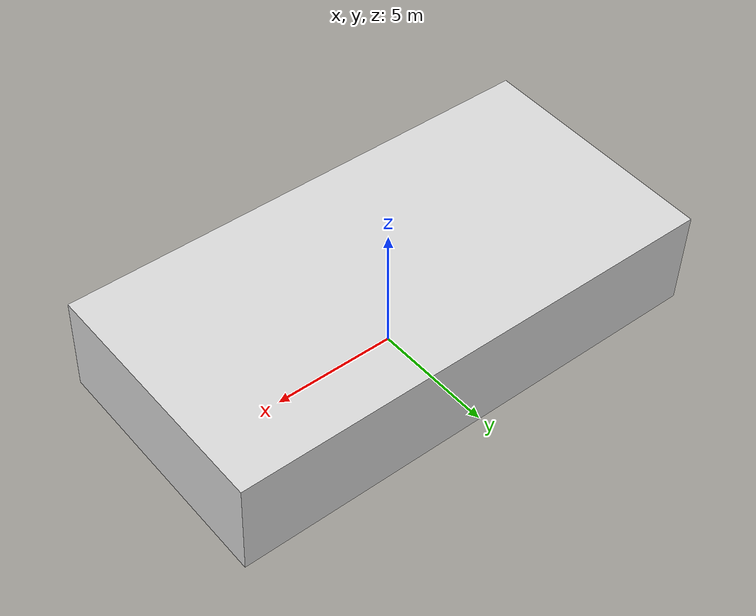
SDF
<?xml version="1.0"?>
<!--
  Environnement de test : Bureau open-space avec grandes baies vitrées
  - 3 grandes baies vitrées (4×3m chacune)
  - Fenêtres de bureau (1.5×1.5m)
  - Obstacles (meubles, cloisons)
-->
<sdf version="1.7">
<world name="office">

  <include>
    <uri>model://sun</uri>
  </include>

  <scene>
    <ambient>0.75 0.75 0.75 1</ambient>
    <background>0.88 0.88 0.92 1</background>
    <shadows>true</shadows>
  </scene>

  <physics type="ode">
    <real_time_factor>1.0</real_time_factor>
    <real_time_update_rate>1000</real_time_update_rate>
    <max_step_size>0.001</max_step_size>
    <gravity>0 0 -9.81</gravity>
  </physics>

  <!-- Baie vitrée 1 -->
  <model name="bay_window_1">
    <pose>-5 0 2.0 0 0 0</pose>
    <static>true</static>
    <link name="glass">
      <collision name="collision">
        <geometry>
          <box><size>4.0 3.0 0.01</size></box>
        </geometry>
        <surface>
          <friction>
            <ode><mu>0.1</mu><mu2>0.1</mu2></ode>
          </friction>
        </surface>
      </collision>
      <visual name="visual">
        <geometry>
          <box><size>4.0 3.0 0.01</size></box>
        </geometry>
        <material>
          <transparency>0.25</transparency>
          <ambient>0.85 0.9 0.95 0.4</ambient>
        </material>
      </visual>
      <inertial>
        <mass>120.0</mass>
        <inertia>
          <ixx>90.0</ixx>
          <iyy>160.0</iyy>
          <izz>250.0</izz>
        </inertia>
      </inertial>
    </link>
  </model>

  <!-- Baie vitrée 2 -->
  <model name="bay_window_2">
    <pose>0 0 2.0 0 0 0</pose>
    <static>true</static>
    <link name="glass">
      <collision name="collision">
        <geometry>
          <box><size>4.0 3.0 0.01</size></box>
        </geometry>
        <surface>
          <friction>
            <ode><mu>0.1</mu><mu2>0.1</mu2></ode>
          </friction>
        </surface>
      </collision>
      <visual name="visual">
        <geometry>
          <box><size>4.0 3.0 0.01</size></box>
        </geometry>
        <material>
          <transparency>0.25</transparency>
          <ambient>0.85 0.9 0.95 0.4</ambient>
        </material>
      </visual>
      <inertial>
        <mass>120.0</mass>
        <inertia>
          <ixx>90.0</ixx>
          <iyy>160.0</iyy>
          <izz>250.0</izz>
        </inertia>
      </inertial>
    </link>
  </model>

  <!-- Baie vitrée 3 -->
  <model name="bay_window_3">
    <pose>5 0 2.0 0 0 0</pose>
    <static>true</static>
    <link name="glass">
      <collision name="collision">
        <geometry>
          <box><size>4.0 3.0 0.01</size></box>
        </geometry>
        <surface>
          <friction>
            <ode><mu>0.1</mu><mu2>0.1</mu2></ode>
          </friction>
        </surface>
      </collision>
      <visual name="visual">
        <geometry>
          <box><size>4.0 3.0 0.01</size></box>
        </geometry>
        <material>
          <transparency>0.25</transparency>
          <ambient>0.85 0.9 0.95 0.4</ambient>
        </material>
      </visual>
      <inertial>
        <mass>120.0</mass>
        <inertia>
          <ixx>90.0</ixx>
          <iyy>160.0</iyy>
          <izz>250.0</izz>
        </inertia>
      </inertial>
    </link>
  </model>

  <!-- Fenêtres de bureau -->
  <model name="office_window_1">
    <pose>-2.5 4 1.5 0 0 0</pose>
    <static>true</static>
    <link name="glass">
      <collision name="collision">
        <geometry>
          <box><size>1.5 1.5 0.01</size></box>
        </geometry>
        <surface>
          <friction>
            <ode><mu>0.1</mu><mu2>0.1</mu2></ode>
          </friction>
        </surface>
      </collision>
      <visual name="visual">
        <geometry>
          <box><size>1.5 1.5 0.01</size></box>
        </geometry>
        <material>
          <transparency>0.3</transparency>
          <ambient>0.9 0.9 1.0 0.5</ambient>
        </material>
      </visual>
      <inertial>
        <mass>22.5</mass>
        <inertia>
          <ixx>4.22</ixx>
          <iyy>4.22</iyy>
          <izz>8.44</izz>
        </inertia>
      </inertial>
    </link>
  </model>

  <model name="office_window_2">
    <pose>2.5 4 1.5 0 0 0</pose>
    <static>true</static>
    <link name="glass">
      <collision name="collision">
        <geometry>
          <box><size>1.5 1.5 0.01</size></box>
        </geometry>
        <surface>
          <friction>
            <ode><mu>0.1</mu><mu2>0.1</mu2></ode>
          </friction>
        </surface>
      </collision>
      <visual name="visual">
        <geometry>
          <box><size>1.5 1.5 0.01</size></box>
        </geometry>
        <material>
          <transparency>0.3</transparency>
          <ambient>0.9 0.9 1.0 0.5</ambient>
        </material>
      </visual>
      <inertial>
        <mass>22.5</mass>
        <inertia>
          <ixx>4.22</ixx>
          <iyy>4.22</iyy>
          <izz>8.44</izz>
        </inertia>
      </inertial>
    </link>
  </model>

  <!-- Cloisons (obstacles) -->
  <model name="partition_1">
    <pose>0 3.5 1.0 0 0 0</pose>
    <static>true</static>
    <link name="partition">
      <collision name="collision">
        <geometry>
          <box><size>8.0 0.1 2.0</size></box>
        </geometry>
      </collision>
      <visual name="visual">
        <geometry>
          <box><size>8.0 0.1 2.0</size></box>
        </geometry>
        <material>
          <ambient>0.7 0.7 0.7 1</ambient>
        </material>
      </visual>
    </link>
  </model>

  <!-- Mur de support -->
  <model name="office_wall">
    <pose>0 0 2.0 -0.05 0 0</pose>
    <static>true</static>
    <link name="wall">
      <collision name="collision">
        <geometry>
          <box><size>20 10 4</size></box>
        </geometry>
      </collision>
      <visual name="visual">
        <geometry>
          <box><size>20 10 4</size></box>
        </geometry>
        <material>
          <ambient>0.85 0.85 0.85 1</ambient>
        </material>
      </visual>
    </link>
  </model>

  <light type="directional" name="office_light">
    <pose>0 0 6 0.2 -0.2 -1</pose>
    <diffuse>0.9 0.9 0.88 1</diffuse>
    <cast_shadows>true</cast_shadows>
  </light>

</world>
</sdf>
